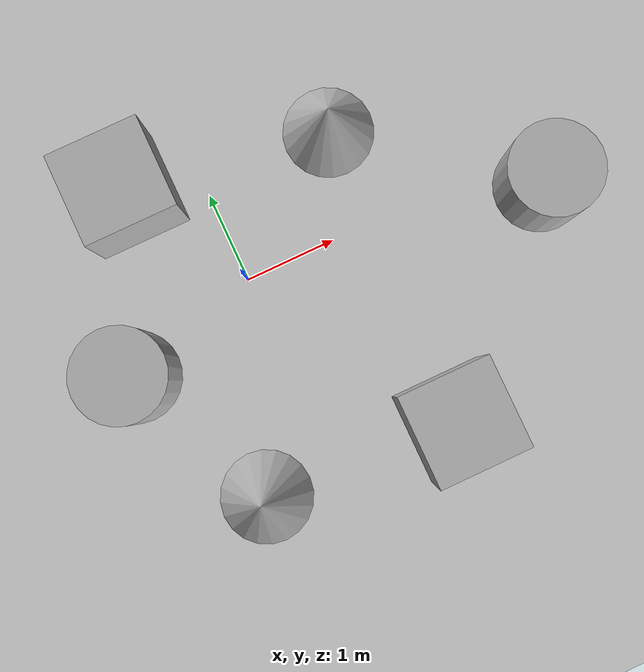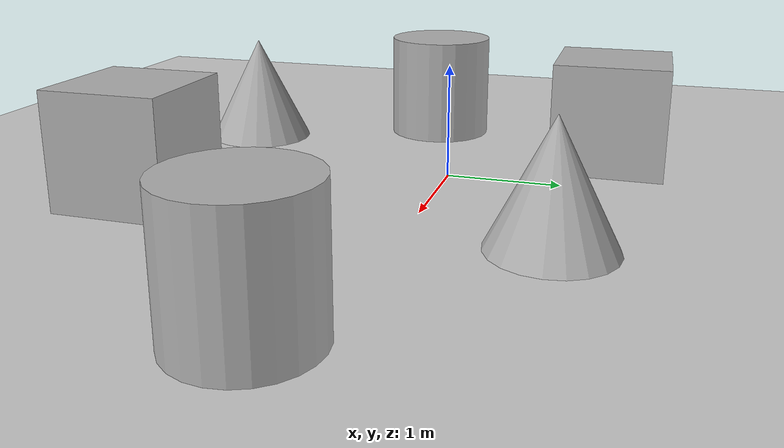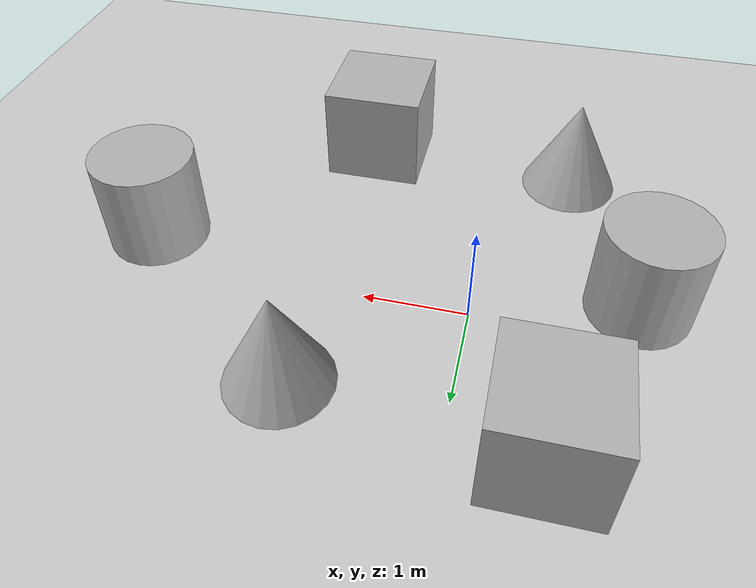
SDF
<sdf version='1.10'>
  <world name='empty'>
    <physics name='1ms' type='ignored'>
      <max_step_size>0.001</max_step_size>
      <real_time_factor>1</real_time_factor>
      <real_time_update_rate>1000</real_time_update_rate>
    </physics>
    <plugin name='gz::sim::systems::Physics' filename='gz-sim-physics-system'/>
    <plugin name='gz::sim::systems::UserCommands' filename='gz-sim-user-commands-system'/>
    <plugin name='gz::sim::systems::SceneBroadcaster' filename='gz-sim-scene-broadcaster-system'/>
    <plugin name='gz::sim::systems::Sensors' filename='gz-sim-sensors-system'>
      <render_engine>ogre2</render_engine>
    </plugin>
    <plugin name='gz::sim::systems::Contact' filename='gz-sim-contact-system'/>
    <gravity>0 0 -9.8000000000000007</gravity>
    <magnetic_field>5.5644999999999998e-06 2.2875799999999999e-05 -4.2388400000000002e-05</magnetic_field>
    <atmosphere type='adiabatic'/>
    <scene>
      <ambient>0.400000006 0.400000006 0.400000006 1</ambient>
      <background>0.699999988 0.699999988 0.699999988 1</background>
      <shadows>true</shadows>
    </scene>
    <model name='ground_plane'>
      <static>true</static>
      <link name='link'>
        <collision name='collision'>
          <geometry>
            <plane>
              <normal>0 0 1</normal>
              <size>100 100</size>
            </plane>
          </geometry>
          <surface>
            <friction>
              <ode/>
            </friction>
            <bounce/>
            <contact/>
          </surface>
        </collision>
        <visual name='visual'>
          <geometry>
            <plane>
              <normal>0 0 1</normal>
              <size>100 100</size>
            </plane>
          </geometry>
          <material>
            <ambient>0.800000012 0.800000012 0.800000012 1</ambient>
            <diffuse>0.800000012 0.800000012 0.800000012 1</diffuse>
            <specular>0.800000012 0.800000012 0.800000012 1</specular>
          </material>
        </visual>
        <pose>0 0 0 0 0 0</pose>
        <inertial>
          <pose>0 0 0 0 0 0</pose>
          <mass>1</mass>
          <inertia>
            <ixx>1</ixx>
            <ixy>0</ixy>
            <ixz>0</ixz>
            <iyy>1</iyy>
            <iyz>0</iyz>
            <izz>1</izz>
          </inertia>
        </inertial>
        <enable_wind>false</enable_wind>
      </link>
      <pose>0 0 0 0 0 0</pose>
      <self_collide>false</self_collide>
    </model>
    <model name='cone'>
      <pose>1.4588876255772649 1.0947439090877009 0.49999999993296756 5.2545596358786652e-17 -7.7132841034561468e-10 1.0690809589845816e-23</pose>
      <link name='cone_link'>
        <inertial>
          <inertia>
            <ixx>0.074999999999999997</ixx>
            <ixy>0</ixy>
            <ixz>0</ixz>
            <iyy>0.074999999999999997</iyy>
            <iyz>0</iyz>
            <izz>0.074999999999999997</izz>
          </inertia>
          <mass>1</mass>
          <pose>0 0 0 0 0 0</pose>
        </inertial>
        <collision name='cone_collision'>
          <geometry>
            <cone>
              <radius>0.5</radius>
              <length>1</length>
            </cone>
          </geometry>
          <surface>
            <friction>
              <ode/>
            </friction>
            <bounce/>
            <contact/>
          </surface>
        </collision>
        <visual name='cone_visual'>
          <geometry>
            <cone>
              <radius>0.5</radius>
              <length>1</length>
            </cone>
          </geometry>
          <material>
            <ambient>0.300000012 0.300000012 0.300000012 1</ambient>
            <diffuse>0.699999988 0.699999988 0.699999988 1</diffuse>
            <specular>1 1 1 1</specular>
          </material>
        </visual>
        <pose>0 0 0 0 0 0</pose>
        <enable_wind>false</enable_wind>
      </link>
      <static>false</static>
      <self_collide>false</self_collide>
    </model>
    <model name='box'>
      <pose>1.3604393328842246 -2.2884697262706268 0.49999999990199806 6.2287739151293738e-22 9.3279666454713669e-22 -3.6315533669320137e-22</pose>
      <link name='box_link'>
        <inertial>
          <inertia>
            <ixx>0.16666</ixx>
            <ixy>0</ixy>
            <ixz>0</ixz>
            <iyy>0.16666</iyy>
            <iyz>0</iyz>
            <izz>0.16666</izz>
          </inertia>
          <mass>1</mass>
          <pose>0 0 0 0 0 0</pose>
        </inertial>
        <collision name='box_collision'>
          <geometry>
            <box>
              <size>1 1 1</size>
            </box>
          </geometry>
          <surface>
            <friction>
              <ode/>
            </friction>
            <bounce/>
            <contact/>
          </surface>
        </collision>
        <visual name='box_visual'>
          <geometry>
            <box>
              <size>1 1 1</size>
            </box>
          </geometry>
          <material>
            <ambient>0.300000012 0.300000012 0.300000012 1</ambient>
            <diffuse>0.699999988 0.699999988 0.699999988 1</diffuse>
            <specular>1 1 1 1</specular>
          </material>
        </visual>
        <pose>0 0 0 0 0 0</pose>
        <enable_wind>false</enable_wind>
      </link>
      <static>false</static>
      <self_collide>false</self_collide>
    </model>
    <model name='cylinder'>
      <pose>3.2707219597161252 -0.40680346297645442 0.49999942638036005 1.6640592244073947e-19 -6.7238227730092842e-19 1.8629878737626624e-20</pose>
      <link name='cylinder_link'>
        <inertial>
          <inertia>
            <ixx>0.14580000000000001</ixx>
            <ixy>0</ixy>
            <ixz>0</ixz>
            <iyy>0.14580000000000001</iyy>
            <iyz>0</iyz>
            <izz>0.125</izz>
          </inertia>
          <mass>1</mass>
          <pose>0 0 0 0 0 0</pose>
        </inertial>
        <collision name='cylinder_collision'>
          <geometry>
            <cylinder>
              <radius>0.5</radius>
              <length>1</length>
            </cylinder>
          </geometry>
          <surface>
            <friction>
              <ode/>
            </friction>
            <bounce/>
            <contact/>
          </surface>
        </collision>
        <visual name='cylinder_visual'>
          <geometry>
            <cylinder>
              <radius>0.5</radius>
              <length>1</length>
            </cylinder>
          </geometry>
          <material>
            <ambient>0.300000012 0.300000012 0.300000012 1</ambient>
            <diffuse>0.699999988 0.699999988 0.699999988 1</diffuse>
            <specular>1 1 1 1</specular>
          </material>
        </visual>
        <pose>0 0 0 0 0 0</pose>
        <enable_wind>false</enable_wind>
      </link>
      <static>false</static>
      <self_collide>false</self_collide>
    </model>
    <model name='cylinder_0'>
      <pose>-1.526033820012529 -0.44319466749345693 0.49999942638036005 -2.4466293118366905e-20 1.2267610049172142e-20 -2.7867168493601237e-21</pose>
      <link name='cylinder_link'>
        <inertial>
          <inertia>
            <ixx>0.14580000000000001</ixx>
            <ixy>0</ixy>
            <ixz>0</ixz>
            <iyy>0.14580000000000001</iyy>
            <iyz>0</iyz>
            <izz>0.125</izz>
          </inertia>
          <mass>1</mass>
          <pose>0 0 0 0 0 0</pose>
        </inertial>
        <collision name='cylinder_collision'>
          <geometry>
            <cylinder>
              <radius>0.5</radius>
              <length>1</length>
            </cylinder>
          </geometry>
          <surface>
            <friction>
              <ode/>
            </friction>
            <bounce/>
            <contact/>
          </surface>
        </collision>
        <visual name='cylinder_visual'>
          <geometry>
            <cylinder>
              <radius>0.5</radius>
              <length>1</length>
            </cylinder>
          </geometry>
          <material>
            <ambient>0.300000012 0.300000012 0.300000012 1</ambient>
            <diffuse>0.699999988 0.699999988 0.699999988 1</diffuse>
            <specular>1 1 1 1</specular>
          </material>
        </visual>
        <pose>0 0 0 0 0 0</pose>
        <enable_wind>false</enable_wind>
      </link>
      <static>false</static>
      <self_collide>false</self_collide>
    </model>
    <model name='cone_0'>
      <pose>-0.78837016828380557 -2.1866571387137483 0.49999999993296756 5.2542474327592625e-17 -7.7132841039333329e-10 -1.7140678508643009e-22</pose>
      <link name='cone_link'>
        <inertial>
          <inertia>
            <ixx>0.074999999999999997</ixx>
            <ixy>0</ixy>
            <ixz>0</ixz>
            <iyy>0.074999999999999997</iyy>
            <iyz>0</iyz>
            <izz>0.074999999999999997</izz>
          </inertia>
          <mass>1</mass>
          <pose>0 0 0 0 0 0</pose>
        </inertial>
        <collision name='cone_collision'>
          <geometry>
            <cone>
              <radius>0.5</radius>
              <length>1</length>
            </cone>
          </geometry>
          <surface>
            <friction>
              <ode/>
            </friction>
            <bounce/>
            <contact/>
          </surface>
        </collision>
        <visual name='cone_visual'>
          <geometry>
            <cone>
              <radius>0.5</radius>
              <length>1</length>
            </cone>
          </geometry>
          <material>
            <ambient>0.300000012 0.300000012 0.300000012 1</ambient>
            <diffuse>0.699999988 0.699999988 0.699999988 1</diffuse>
            <specular>1 1 1 1</specular>
          </material>
        </visual>
        <pose>0 0 0 0 0 0</pose>
        <enable_wind>false</enable_wind>
      </link>
      <static>false</static>
      <self_collide>false</self_collide>
    </model>
    <model name='box_0'>
      <pose>-0.80099202716871876 1.3539446632604242 0.49999999990199806 6.2287739151293738e-22 9.3279666454713669e-22 -3.6315533669320137e-22</pose>
      <link name='box_link'>
        <inertial>
          <inertia>
            <ixx>0.16666</ixx>
            <ixy>0</ixy>
            <ixz>0</ixz>
            <iyy>0.16666</iyy>
            <iyz>0</iyz>
            <izz>0.16666</izz>
          </inertia>
          <mass>1</mass>
          <pose>0 0 0 0 0 0</pose>
        </inertial>
        <collision name='box_collision'>
          <geometry>
            <box>
              <size>1 1 1</size>
            </box>
          </geometry>
          <surface>
            <friction>
              <ode/>
            </friction>
            <bounce/>
            <contact/>
          </surface>
        </collision>
        <visual name='box_visual'>
          <geometry>
            <box>
              <size>1 1 1</size>
            </box>
          </geometry>
          <material>
            <ambient>0.300000012 0.300000012 0.300000012 1</ambient>
            <diffuse>0.699999988 0.699999988 0.699999988 1</diffuse>
            <specular>1 1 1 1</specular>
          </material>
        </visual>
        <pose>0 0 0 0 0 0</pose>
        <enable_wind>false</enable_wind>
      </link>
      <static>false</static>
      <self_collide>false</self_collide>
    </model>
    <light name='sun' type='directional'>
      <pose>0 0 10 0 0 0</pose>
      <cast_shadows>true</cast_shadows>
      <intensity>1</intensity>
      <direction>-0.5 0.10000000000000001 -0.90000000000000002</direction>
      <diffuse>0.800000012 0.800000012 0.800000012 1</diffuse>
      <specular>0.200000003 0.200000003 0.200000003 1</specular>
      <attenuation>
        <range>1000</range>
        <linear>0.01</linear>
        <constant>0.90000000000000002</constant>
        <quadratic>0.001</quadratic>
      </attenuation>
      <spot>
        <inner_angle>0</inner_angle>
        <outer_angle>0</outer_angle>
        <falloff>0</falloff>
      </spot>
    </light>
  </world>
</sdf>
